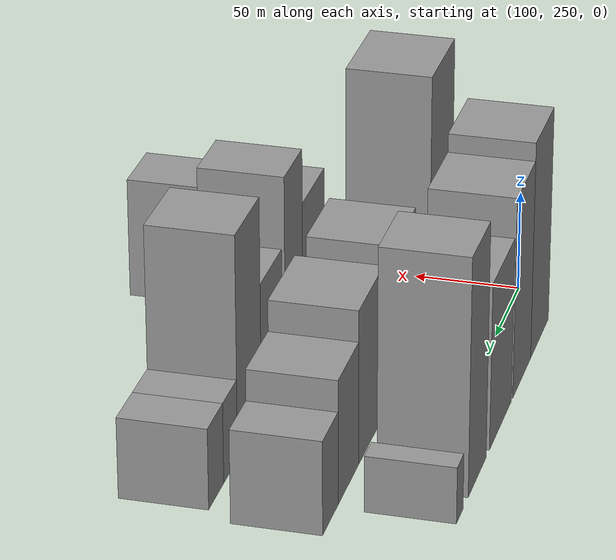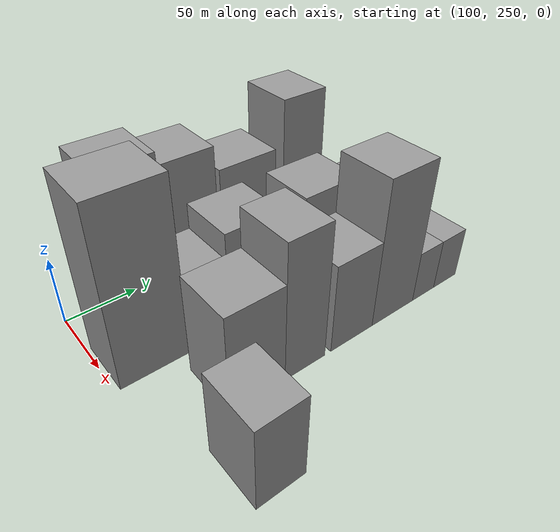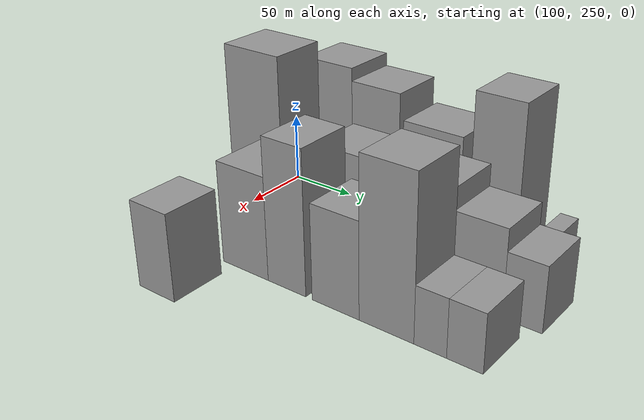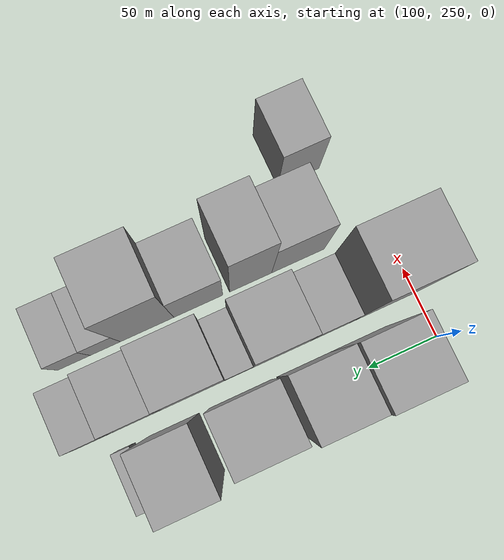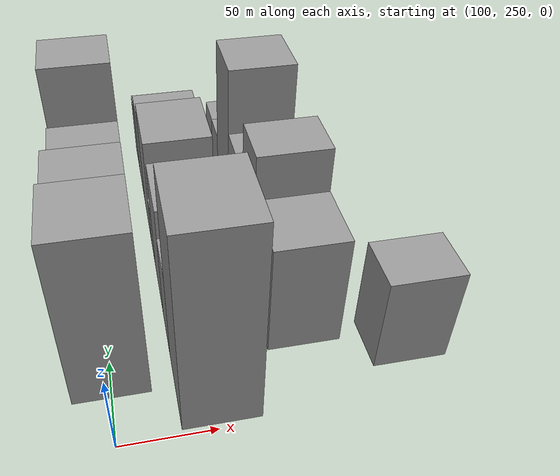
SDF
<sdf version="1.6">
 <world name="default">
  <model name="building_33">
   <static>1</static>
   <pose>100.0000 297.9278 0 0.000000 0.000000 0.000000</pose>
   <link name="link">
    <pose>0 0 54.00 0 0 0</pose>
    <collision name="collision"><geometry><box><size>40.0000 40.3631 108.0000</size></box></geometry></collision>
    <visual name="visual">
     <cast_shadows>0</cast_shadows>
     <geometry><box><size>40.0000 40.3631 108.0000</size></box></geometry>
     <material>
      <script>
       <uri>model://grey_wall/materials/scripts</uri>
       <uri>model://grey_wall/materials/textures</uri>
       <name>vrc/grey_wall</name>
      </script>
     </material>
    </visual>
   </link>
  </model>
  <model name="building_34">
   <static>1</static>
   <pose>100.0000 337.8094 0 0.000000 0.000000 0.000000</pose>
   <link name="link">
    <pose>0 0 49.50 0 0 0</pose>
    <collision name="collision"><geometry><box><size>40.0000 39.4001 99.0000</size></box></geometry></collision>
    <visual name="visual">
     <cast_shadows>0</cast_shadows>
     <geometry><box><size>40.0000 39.4001 99.0000</size></box></geometry>
     <material>
      <script>
       <uri>model://grey_wall/materials/scripts</uri>
       <uri>model://grey_wall/materials/textures</uri>
       <name>vrc/grey_wall</name>
      </script>
     </material>
    </visual>
   </link>
  </model>
  <model name="building_35">
   <static>1</static>
   <pose>100.0000 383.2852 0 0.000000 0.000000 0.000000</pose>
   <link name="link">
    <pose>0 0 40.50 0 0 0</pose>
    <collision name="collision"><geometry><box><size>40.0000 45.5514 81.0000</size></box></geometry></collision>
    <visual name="visual">
     <cast_shadows>0</cast_shadows>
     <geometry><box><size>40.0000 45.5514 81.0000</size></box></geometry>
     <material>
      <script>
       <uri>model://grey_wall/materials/scripts</uri>
       <uri>model://grey_wall/materials/textures</uri>
       <name>vrc/grey_wall</name>
      </script>
     </material>
    </visual>
   </link>
  </model>
  <model name="building_36">
   <static>1</static>
   <pose>100.0000 430.8100 0 0.000000 0.000000 0.000000</pose>
   <link name="link">
    <pose>0 0 57.00 0 0 0</pose>
    <collision name="collision"><geometry><box><size>40.0000 35.4983 114.0000</size></box></geometry></collision>
    <visual name="visual">
     <cast_shadows>0</cast_shadows>
     <geometry><box><size>40.0000 35.4983 114.0000</size></box></geometry>
     <material>
      <script>
       <uri>model://grey_wall/materials/scripts</uri>
       <uri>model://grey_wall/materials/textures</uri>
       <name>vrc/grey_wall</name>
      </script>
     </material>
    </visual>
   </link>
  </model>
  <model name="building_37">
   <static>1</static>
   <pose>100.0000 464.8582 0 0.000000 0.000000 0.000000</pose>
   <link name="link">
    <pose>0 0 13.50 0 0 0</pose>
    <collision name="collision"><geometry><box><size>40.0000 12.5981 27.0000</size></box></geometry></collision>
    <visual name="visual">
     <cast_shadows>0</cast_shadows>
     <geometry><box><size>40.0000 12.5981 27.0000</size></box></geometry>
     <material>
      <script>
       <uri>model://grey_wall/materials/scripts</uri>
       <uri>model://grey_wall/materials/textures</uri>
       <name>vrc/grey_wall</name>
      </script>
     </material>
    </visual>
   </link>
  </model>
  <model name="building_82">
   <static>1</static>
   <pose>152.0000 276.0026 0 0.000000 0.000000 0.000000</pose>
   <link name="link">
    <pose>0 0 63.00 0 0 0</pose>
    <collision name="collision"><geometry><box><size>40.0000 45.9682 126.0000</size></box></geometry></collision>
    <visual name="visual">
     <cast_shadows>0</cast_shadows>
     <geometry><box><size>40.0000 45.9682 126.0000</size></box></geometry>
     <material>
      <script>
       <uri>model://grey_wall/materials/scripts</uri>
       <uri>model://grey_wall/materials/textures</uri>
       <name>vrc/grey_wall</name>
      </script>
     </material>
    </visual>
   </link>
  </model>
  <model name="building_83">
   <static>1</static>
   <pose>152.0000 313.8508 0 0.000000 0.000000 0.000000</pose>
   <link name="link">
    <pose>0 0 28.50 0 0 0</pose>
    <collision name="collision"><geometry><box><size>40.0000 29.7282 57.0000</size></box></geometry></collision>
    <visual name="visual">
     <cast_shadows>0</cast_shadows>
     <geometry><box><size>40.0000 29.7282 57.0000</size></box></geometry>
     <material>
      <script>
       <uri>model://grey_wall/materials/scripts</uri>
       <uri>model://grey_wall/materials/textures</uri>
       <name>vrc/grey_wall</name>
      </script>
     </material>
    </visual>
   </link>
  </model>
  <model name="building_84">
   <static>1</static>
   <pose>152.0000 349.1317 0 0.000000 0.000000 0.000000</pose>
   <link name="link">
    <pose>0 0 37.50 0 0 0</pose>
    <collision name="collision"><geometry><box><size>40.0000 40.8337 75.0000</size></box></geometry></collision>
    <visual name="visual">
     <cast_shadows>0</cast_shadows>
     <geometry><box><size>40.0000 40.8337 75.0000</size></box></geometry>
     <material>
      <script>
       <uri>model://grey_wall/materials/scripts</uri>
       <uri>model://grey_wall/materials/textures</uri>
       <name>vrc/grey_wall</name>
      </script>
     </material>
    </visual>
   </link>
  </model>
  <model name="building_85">
   <static>1</static>
   <pose>152.0000 379.1032 0 0.000000 0.000000 0.000000</pose>
   <link name="link">
    <pose>0 0 18.00 0 0 0</pose>
    <collision name="collision"><geometry><box><size>40.0000 19.1092 36.0000</size></box></geometry></collision>
    <visual name="visual">
     <cast_shadows>0</cast_shadows>
     <geometry><box><size>40.0000 19.1092 36.0000</size></box></geometry>
     <material>
      <script>
       <uri>model://grey_wall/materials/scripts</uri>
       <uri>model://grey_wall/materials/textures</uri>
       <name>vrc/grey_wall</name>
      </script>
     </material>
    </visual>
   </link>
  </model>
  <model name="building_86">
   <static>1</static>
   <pose>152.0000 410.8548 0 0.000000 0.000000 0.000000</pose>
   <link name="link">
    <pose>0 0 37.50 0 0 0</pose>
    <collision name="collision"><geometry><box><size>40.0000 44.3940 75.0000</size></box></geometry></collision>
    <visual name="visual">
     <cast_shadows>0</cast_shadows>
     <geometry><box><size>40.0000 44.3940 75.0000</size></box></geometry>
     <material>
      <script>
       <uri>model://grey_wall/materials/scripts</uri>
       <uri>model://grey_wall/materials/textures</uri>
       <name>vrc/grey_wall</name>
      </script>
     </material>
    </visual>
   </link>
  </model>
  <model name="building_87">
   <static>1</static>
   <pose>152.0000 450.8111 0 0.000000 0.000000 0.000000</pose>
   <link name="link">
    <pose>0 0 30.00 0 0 0</pose>
    <collision name="collision"><geometry><box><size>40.0000 35.5186 60.0000</size></box></geometry></collision>
    <visual name="visual">
     <cast_shadows>0</cast_shadows>
     <geometry><box><size>40.0000 35.5186 60.0000</size></box></geometry>
     <material>
      <script>
       <uri>model://grey_wall/materials/scripts</uri>
       <uri>model://grey_wall/materials/textures</uri>
       <name>vrc/grey_wall</name>
      </script>
     </material>
    </visual>
   </link>
  </model>
  <model name="building_88">
   <static>1</static>
   <pose>152.0000 481.5410 0 0.000000 0.000000 0.000000</pose>
   <link name="link">
    <pose>0 0 22.50 0 0 0</pose>
    <collision name="collision"><geometry><box><size>40.0000 25.9411 45.0000</size></box></geometry></collision>
    <visual name="visual">
     <cast_shadows>0</cast_shadows>
     <geometry><box><size>40.0000 25.9411 45.0000</size></box></geometry>
     <material>
      <script>
       <uri>model://grey_wall/materials/scripts</uri>
       <uri>model://grey_wall/materials/textures</uri>
       <name>vrc/grey_wall</name>
      </script>
     </material>
    </visual>
   </link>
  </model>
  <model name="building_131">
   <static>1</static>
   <pose>204.0000 311.7032 0 0.000000 0.000000 0.000000</pose>
   <link name="link">
    <pose>0 0 36.00 0 0 0</pose>
    <collision name="collision"><geometry><box><size>40.0000 38.9928 72.0000</size></box></geometry></collision>
    <visual name="visual">
     <cast_shadows>0</cast_shadows>
     <geometry><box><size>40.0000 38.9928 72.0000</size></box></geometry>
     <material>
      <script>
       <uri>model://grey_wall/materials/scripts</uri>
       <uri>model://grey_wall/materials/textures</uri>
       <name>vrc/grey_wall</name>
      </script>
     </material>
    </visual>
   </link>
  </model>
  <model name="building_132">
   <static>1</static>
   <pose>204.0000 346.5646 0 0.000000 0.000000 0.000000</pose>
   <link name="link">
    <pose>0 0 49.50 0 0 0</pose>
    <collision name="collision"><geometry><box><size>40.0000 30.7300 99.0000</size></box></geometry></collision>
    <visual name="visual">
     <cast_shadows>0</cast_shadows>
     <geometry><box><size>40.0000 30.7300 99.0000</size></box></geometry>
     <material>
      <script>
       <uri>model://grey_wall/materials/scripts</uri>
       <uri>model://grey_wall/materials/textures</uri>
       <name>vrc/grey_wall</name>
      </script>
     </material>
    </visual>
   </link>
  </model>
  <model name="building_133">
   <static>1</static>
   <pose>204.0000 384.7254 0 0.000000 0.000000 0.000000</pose>
   <link name="link">
    <pose>0 0 33.00 0 0 0</pose>
    <collision name="collision"><geometry><box><size>40.0000 35.5917 66.0000</size></box></geometry></collision>
    <visual name="visual">
     <cast_shadows>0</cast_shadows>
     <geometry><box><size>40.0000 35.5917 66.0000</size></box></geometry>
     <material>
      <script>
       <uri>model://grey_wall/materials/scripts</uri>
       <uri>model://grey_wall/materials/textures</uri>
       <name>vrc/grey_wall</name>
      </script>
     </material>
    </visual>
   </link>
  </model>
  <model name="building_134">
   <static>1</static>
   <pose>204.0000 421.8141 0 0.000000 0.000000 0.000000</pose>
   <link name="link">
    <pose>0 0 54.00 0 0 0</pose>
    <collision name="collision"><geometry><box><size>40.0000 38.5857 108.0000</size></box></geometry></collision>
    <visual name="visual">
     <cast_shadows>0</cast_shadows>
     <geometry><box><size>40.0000 38.5857 108.0000</size></box></geometry>
     <material>
      <script>
       <uri>model://grey_wall/materials/scripts</uri>
       <uri>model://grey_wall/materials/textures</uri>
       <name>vrc/grey_wall</name>
      </script>
     </material>
    </visual>
   </link>
  </model>
  <model name="building_135">
   <static>1</static>
   <pose>204.0000 451.9157 0 0.000000 0.000000 0.000000</pose>
   <link name="link">
    <pose>0 0 19.50 0 0 0</pose>
    <collision name="collision"><geometry><box><size>40.0000 21.6175 39.0000</size></box></geometry></collision>
    <visual name="visual">
     <cast_shadows>0</cast_shadows>
     <geometry><box><size>40.0000 21.6175 39.0000</size></box></geometry>
     <material>
      <script>
       <uri>model://grey_wall/materials/scripts</uri>
       <uri>model://grey_wall/materials/textures</uri>
       <name>vrc/grey_wall</name>
      </script>
     </material>
    </visual>
   </link>
  </model>
  <model name="building_136">
   <static>1</static>
   <pose>204.0000 474.3394 0 0.000000 0.000000 0.000000</pose>
   <link name="link">
    <pose>0 0 19.50 0 0 0</pose>
    <collision name="collision"><geometry><box><size>40.0000 23.2300 39.0000</size></box></geometry></collision>
    <visual name="visual">
     <cast_shadows>0</cast_shadows>
     <geometry><box><size>40.0000 23.2300 39.0000</size></box></geometry>
     <material>
      <script>
       <uri>model://grey_wall/materials/scripts</uri>
       <uri>model://grey_wall/materials/textures</uri>
       <name>vrc/grey_wall</name>
      </script>
     </material>
    </visual>
   </link>
  </model>
  <model name="building_181">
   <static>1</static>
   <pose>256.0000 286.7656 0 0.000000 0.000000 0.000000</pose>
   <link name="link">
    <pose>0 0 30.00 0 0 0</pose>
    <collision name="collision"><geometry><box><size>40.0000 31.0158 60.0000</size></box></geometry></collision>
    <visual name="visual">
     <cast_shadows>0</cast_shadows>
     <geometry><box><size>40.0000 31.0158 60.0000</size></box></geometry>
     <material>
      <script>
       <uri>model://grey_wall/materials/scripts</uri>
       <uri>model://grey_wall/materials/textures</uri>
       <name>vrc/grey_wall</name>
      </script>
     </material>
    </visual>
   </link>
  </model>
 </world>
</sdf>
